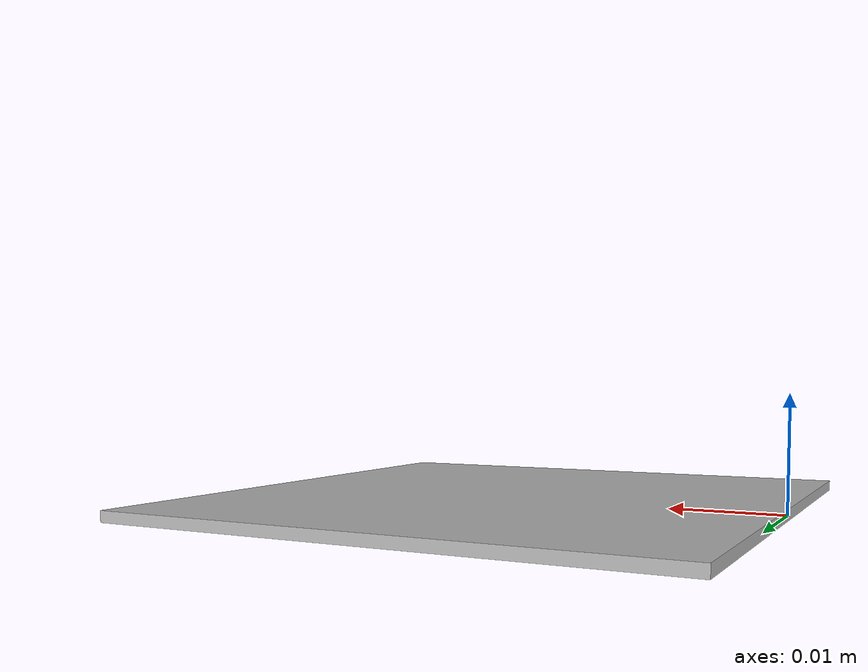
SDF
<?xml version="1.0" ?><sdf version="1.6">

<model name="Box2">

  <static>false</static>

    <link name="Aruco_box">

     <!-- Top aruco face -->
     <visual name="Top">
        <pose>0 0 0 0 1.57 0</pose>
        <geometry>
          <mesh>
            <uri>meshes/Box1.dae</uri>
            <scale>0.1 0.1 0.1</scale>
          </mesh>
        </geometry>
      </visual>

  <collision name="Box_collision">
        <pose>0 0 0 0 0 0</pose>
        <geometry>
          <box>
            <size>0.005 0.005 0.005</size>
          </box>
        </geometry>

  <surface>
    <friction>
      <ode>
        <mu>2.0</mu>
        <mu2>2.0</mu2>
      </ode>
    </friction>
  </surface>

  </collision>

  <inertial>
    <mass value="0.5"/>
    <inertia ixx="0.001633333" ixy="0.0" ixz="0.0" iyy="0.001633333" iyz="0.0" izz="0.001633333"/>
  </inertial>

  </link>
  </model>

</sdf>
